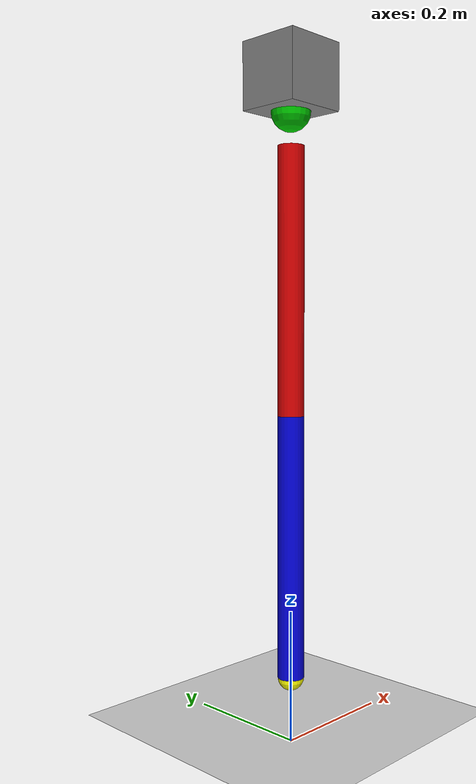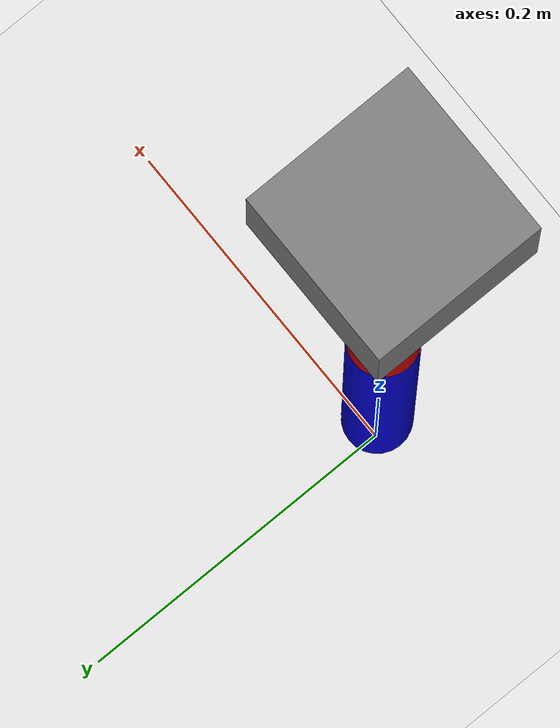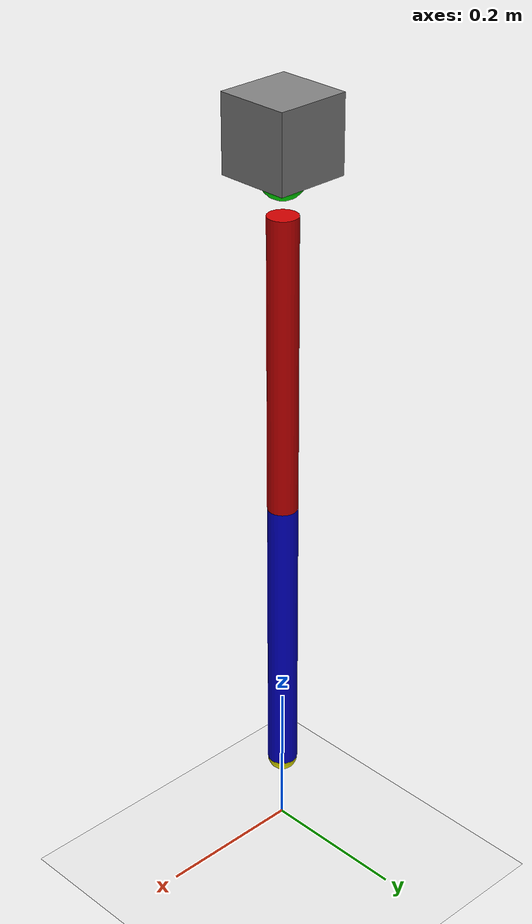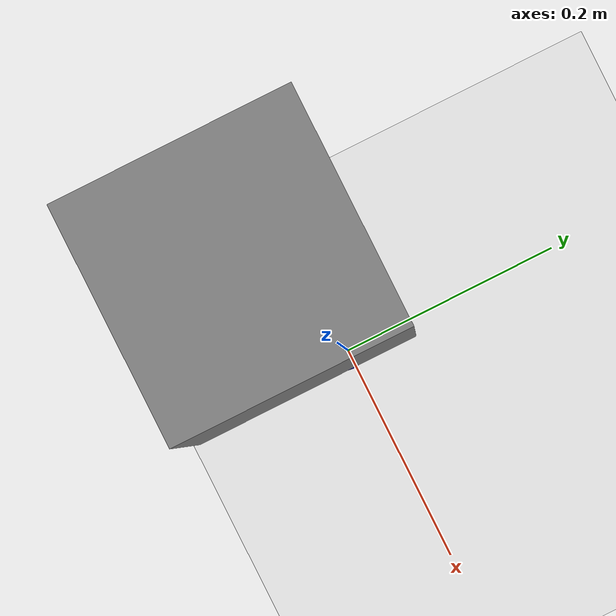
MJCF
<mujoco model="single_leg">
  <option gravity="0 0 -9.81"/>

  <worldbody>
    <geom type="plane" size="1 1 0.1" rgba="0.9 0.9 0.9 1"/>

    <body name="base_link" pos="0 0 1.0">
      <geom type="box" size="0.05 0.05 0.05" rgba="0.5 0.5 0.5 1"/>
      <body name="hip_aa_link" pos="0 0 -0.05">
        <joint name="hip_aa_joint" type="hinge" axis="1 0 0" range="-1.57 1.57" damping="1.0"/>
        <inertial pos="0 0 0" mass="0.5" diaginertia="0.005 0.005 0.005"/>
        <geom type="sphere" size="0.03" rgba="0 0.8 0 1"/>

        <body name="thigh_link" pos="0 0 -0.05">
          <joint name="hip_joint" type="hinge" axis="0 1 0" range="-1.57 1.57" damping="1.0"/>
          <inertial pos="0 0 -0.2" mass="1.0" diaginertia="0.01 0.01 0.01"/>
          <geom type="cylinder" size="0.02 0.2" pos="0 0 -0.2" rgba="0.8 0 0 1"/>

          <body name="calf_link" pos="0 0 -0.4">
            <joint name="knee_joint" type="hinge" axis="0 1 0" range="-1.57 1.57" damping="1.0"/>
            <inertial pos="0 0 -0.2" mass="1.0" diaginertia="0.01 0.01 0.01"/>
            <geom type="cylinder" size="0.02 0.2" pos="0 0 -0.2" rgba="0 0 0.8 1"/>

            <geom name="foot" type="sphere" size="0.02" pos="0 0 -0.4" rgba="1 1 0 1"/>
          </body>
        </body>
      </body>
    </body>
  </worldbody>
</mujoco>
